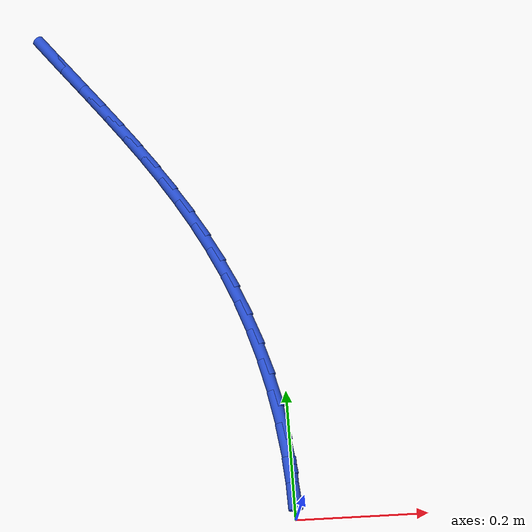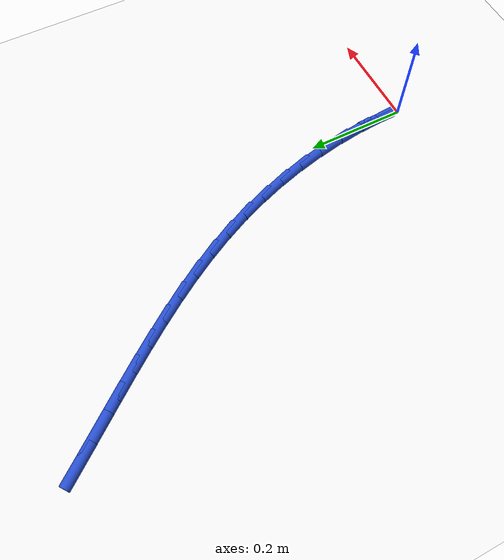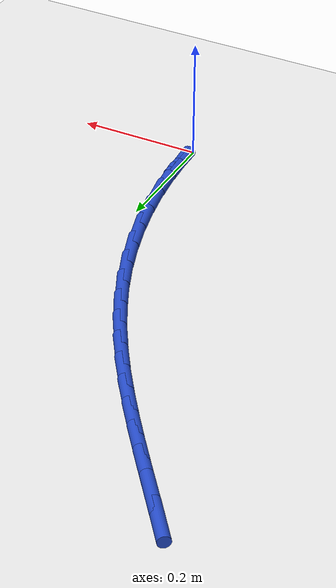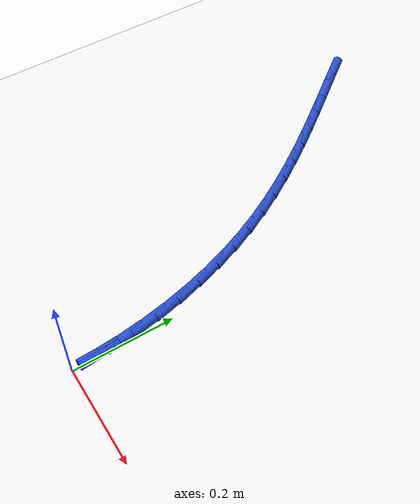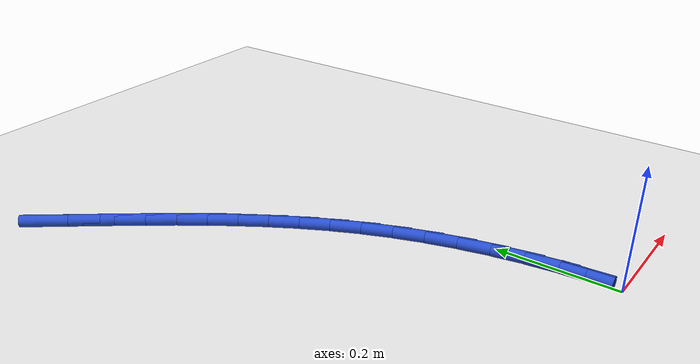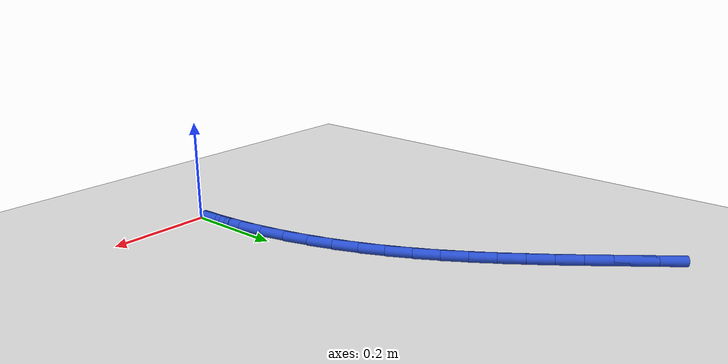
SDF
<sdf version="1.6">
 <world name="default">
  <model name="ground_plane">
   <static>1</static>
   <link name="link">
    <collision name="collision">
     <geometry><plane><normal>0 0 1</normal><size>100 100</size></plane></geometry>
     <surface><friction><ode><mu>100</mu><mu2>50</mu2></ode></friction></surface>
    </collision>
    <visual name="visual">
     <cast_shadows>0</cast_shadows>
     <geometry><plane><normal>0 0 1</normal><size>100 100</size></plane></geometry>
     <material>
      <script><uri>file://media/materials/scripts/gazebo.material</uri><name>Gazebo/WhiteGlow</name></script>
     </material>
    </visual>
   </link>
  </model>
  <model name="line">
   <link name="link_1">
    <pose>-0.0015468377325302059 0.05349569683326053 0.01 0 1.57 -1.488320773407916</pose>
    <collision name="collision">
     <geometry><cylinder><radius>0.01</radius><length>0.08</length></cylinder></geometry>
    </collision>
    <visual name="visual">
     <material>
      <script><name>Gazebo/Blue</name><uri>file://media/materials/scripts/gazebo.material</uri></script>
     </material>
     <geometry><cylinder><radius>0.01</radius><length>0.08</length></cylinder></geometry>
    </visual>
   </link>
   <link name="link_2">
    <pose>-0.005937765961215691 0.1066140757415775 0.01 0 1.57 -1.435700737468811</pose>
    <collision name="collision">
     <geometry><cylinder><radius>0.01</radius><length>0.08</length></cylinder></geometry>
    </collision>
    <visual name="visual">
     <material>
      <script><name>Gazebo/Blue</name><uri>file://media/materials/scripts/gazebo.material</uri></script>
     </material>
     <geometry><cylinder><radius>0.01</radius><length>0.08</length></cylinder></geometry>
    </visual>
   </link>
   <link name="link_3">
    <pose>-0.013083740268007614 0.15918757619750498 0.01 0 1.57 -1.3838091675171387</pose>
    <collision name="collision">
     <geometry><cylinder><radius>0.01</radius><length>0.08</length></cylinder></geometry>
    </collision>
    <visual name="visual">
     <material>
      <script><name>Gazebo/Blue</name><uri>file://media/materials/scripts/gazebo.material</uri></script>
     </material>
     <geometry><cylinder><radius>0.01</radius><length>0.08</length></cylinder></geometry>
    </visual>
   </link>
   <link name="link_4">
    <pose>-0.022895716234857172 0.21104863767359694 0.01 0 1.57 -1.3324067605446857</pose>
    <collision name="collision">
     <geometry><cylinder><radius>0.01</radius><length>0.08</length></cylinder></geometry>
    </collision>
    <visual name="visual">
     <material>
      <script><name>Gazebo/Blue</name><uri>file://media/materials/scripts/gazebo.material</uri></script>
     </material>
     <geometry><cylinder><radius>0.01</radius><length>0.08</length></cylinder></geometry>
    </visual>
   </link>
   <link name="link_5">
    <pose>-0.035284649443715496 0.26202969964240724 0.01 0 1.57 -1.28123679257852</pose>
    <collision name="collision">
     <geometry><cylinder><radius>0.01</radius><length>0.08</length></cylinder></geometry>
    </collision>
    <visual name="visual">
     <material>
      <script><name>Gazebo/Blue</name><uri>file://media/materials/scripts/gazebo.material</uri></script>
     </material>
     <geometry><cylinder><radius>0.01</radius><length>0.08</length></cylinder></geometry>
    </visual>
   </link>
   <link name="link_6">
    <pose>-0.0501614954765338 0.31196320157648993 0.01 0 1.57 -1.2300261875815097</pose>
    <collision name="collision">
     <geometry><cylinder><radius>0.01</radius><length>0.08</length></cylinder></geometry>
    </collision>
    <visual name="visual">
     <material>
      <script><name>Gazebo/Blue</name><uri>file://media/materials/scripts/gazebo.material</uri></script>
     </material>
     <geometry><cylinder><radius>0.01</radius><length>0.08</length></cylinder></geometry>
    </visual>
   </link>
   <link name="link_7">
    <pose>-0.0674372099152632 0.36068158294839886 0.01 0 1.57 -1.1784859244006887</pose>
    <collision name="collision">
     <geometry><cylinder><radius>0.01</radius><length>0.08</length></cylinder></geometry>
    </collision>
    <visual name="visual">
     <material>
      <script><name>Gazebo/Blue</name><uri>file://media/materials/scripts/gazebo.material</uri></script>
     </material>
     <geometry><cylinder><radius>0.01</radius><length>0.08</length></cylinder></geometry>
    </visual>
   </link>
   <link name="link_8">
    <pose>-0.0870227478804155 0.40801728451120045 0.01 0 1.57 -1.127307303523416</pose>
    <collision name="collision">
     <geometry><cylinder><radius>0.01</radius><length>0.08</length></cylinder></geometry>
    </collision>
    <visual name="visual">
     <material>
      <script><name>Gazebo/Blue</name><uri>file://media/materials/scripts/gazebo.material</uri></script>
     </material>
     <geometry><cylinder><radius>0.01</radius><length>0.08</length></cylinder></geometry>
    </visual>
   </link>
   <link name="link_9">
    <pose>-0.10880493511613067 0.45386970698889045 0.01 0 1.57 -1.0802213030149441</pose>
    <collision name="collision">
     <geometry><cylinder><radius>0.01</radius><length>0.08</length></cylinder></geometry>
    </collision>
    <visual name="visual">
     <material>
      <script><name>Gazebo/Blue</name><uri>file://media/materials/scripts/gazebo.material</uri></script>
     </material>
     <geometry><cylinder><radius>0.01</radius><length>0.08</length></cylinder></geometry>
    </visual>
   </link>
   <link name="link_10">
    <pose>-0.13258171016623557 0.4983849165914367 0.01 0 1.57 -1.0385467871221203</pose>
    <collision name="collision">
     <geometry><cylinder><radius>0.01</radius><length>0.08</length></cylinder></geometry>
    </collision>
    <visual name="visual">
     <material>
      <script><name>Gazebo/Blue</name><uri>file://media/materials/scripts/gazebo.material</uri></script>
     </material>
     <geometry><cylinder><radius>0.01</radius><length>0.08</length></cylinder></geometry>
    </visual>
   </link>
   <link name="link_11">
    <pose>-0.15813054873904492 0.5417657647042686 0.01 0 1.57 -1.002640450113896</pose>
    <collision name="collision">
     <geometry><cylinder><radius>0.01</radius><length>0.08</length></cylinder></geometry>
    </collision>
    <visual name="visual">
     <material>
      <script><name>Gazebo/Blue</name><uri>file://media/materials/scripts/gazebo.material</uri></script>
     </material>
     <geometry><cylinder><radius>0.01</radius><length>0.08</length></cylinder></geometry>
    </visual>
   </link>
   <link name="link_12">
    <pose>-0.1852289265428732 0.5842151027128144 0.01 0 1.57 -0.9727133483149497</pose>
    <collision name="collision">
     <geometry><cylinder><radius>0.01</radius><length>0.08</length></cylinder></geometry>
    </collision>
    <visual name="visual">
     <material>
      <script><name>Gazebo/Blue</name><uri>file://media/materials/scripts/gazebo.material</uri></script>
     </material>
     <geometry><cylinder><radius>0.01</radius><length>0.08</length></cylinder></geometry>
    </visual>
   </link>
   <link name="link_13">
    <pose>-0.21365431928603498 0.6259357820025035 0.01 0 1.57 -0.9488615186285746</pose>
    <collision name="collision">
     <geometry><cylinder><radius>0.01</radius><length>0.08</length></cylinder></geometry>
    </collision>
    <visual name="visual">
     <material>
      <script><name>Gazebo/Blue</name><uri>file://media/materials/scripts/gazebo.material</uri></script>
     </material>
     <geometry><cylinder><radius>0.01</radius><length>0.08</length></cylinder></geometry>
    </visual>
   </link>
   <link name="link_14">
    <pose>-0.24318420267684482 0.6671306539587646 0.01 0 1.57 -0.9310967732679925</pose>
    <collision name="collision">
     <geometry><cylinder><radius>0.01</radius><length>0.08</length></cylinder></geometry>
    </collision>
    <visual name="visual">
     <material>
      <script><name>Gazebo/Blue</name><uri>file://media/materials/scripts/gazebo.material</uri></script>
     </material>
     <geometry><cylinder><radius>0.01</radius><length>0.08</length></cylinder></geometry>
    </visual>
   </link>
   <link name="link_15">
    <pose>-0.27359605242361734 0.7080025699670266 0.01 0 1.57 -0.9193735820314799</pose>
    <collision name="collision">
     <geometry><cylinder><radius>0.01</radius><length>0.08</length></cylinder></geometry>
    </collision>
    <visual name="visual">
     <material>
      <script><name>Gazebo/Blue</name><uri>file://media/materials/scripts/gazebo.material</uri></script>
     </material>
     <geometry><cylinder><radius>0.01</radius><length>0.08</length></cylinder></geometry>
    </visual>
   </link>
   <link name="link_16">
    <pose>-0.304667344234667 0.7487543814127184 0.01 0 1.57 -0.9136098692198911</pose>
    <collision name="collision">
     <geometry><cylinder><radius>0.01</radius><length>0.08</length></cylinder></geometry>
    </collision>
    <visual name="visual">
     <material>
      <script><name>Gazebo/Blue</name><uri>file://media/materials/scripts/gazebo.material</uri></script>
     </material>
     <geometry><cylinder><radius>0.01</radius><length>0.08</length></cylinder></geometry>
    </visual>
   </link>
   <link name="link_17">
    <pose>-0.33617555381830866 0.7895889396812692 0.01 0 1.57 -0.9137009693980482</pose>
    <collision name="collision">
     <geometry><cylinder><radius>0.01</radius><length>0.08</length></cylinder></geometry>
    </collision>
    <visual name="visual">
     <material>
      <script><name>Gazebo/Blue</name><uri>file://media/materials/scripts/gazebo.material</uri></script>
     </material>
     <geometry><cylinder><radius>0.01</radius><length>0.08</length></cylinder></geometry>
    </visual>
   </link>
   <link name="link_18">
    <pose>-0.36789815688285665 0.8307090961581076 0.01 0 1.57 -0.9195268614832072</pose>
    <collision name="collision">
     <geometry><cylinder><radius>0.01</radius><length>0.08</length></cylinder></geometry>
    </collision>
    <visual name="visual">
     <material>
      <script><name>Gazebo/Blue</name><uri>file://media/materials/scripts/gazebo.material</uri></script>
     </material>
     <geometry><cylinder><radius>0.01</radius><length>0.08</length></cylinder></geometry>
    </visual>
   </link>
   <link name="link_151">
    <pose>-0.0015735264644241645 0.053469386797478036 0.01 0 1.57 -1.5413762689041932</pose>
    <collision name="collision">
     <geometry><cylinder><radius>0.01</radius><length>0.08</length></cylinder></geometry>
    </collision>
    <visual name="visual">
     <material>
      <script><name>Gazebo/Blue</name><uri>file://media/materials/scripts/gazebo.material</uri></script>
     </material>
     <geometry><cylinder><radius>0.01</radius><length>0.08</length></cylinder></geometry>
    </visual>
   </link>
  </model>
 </world>
</sdf>
